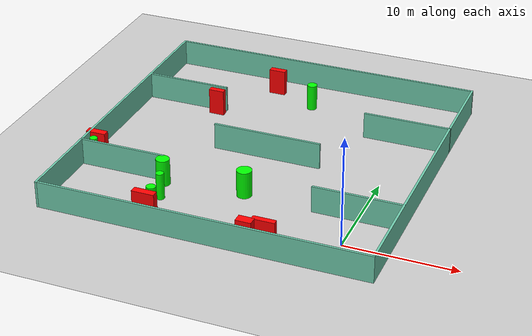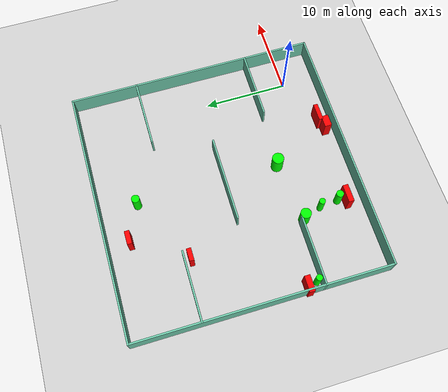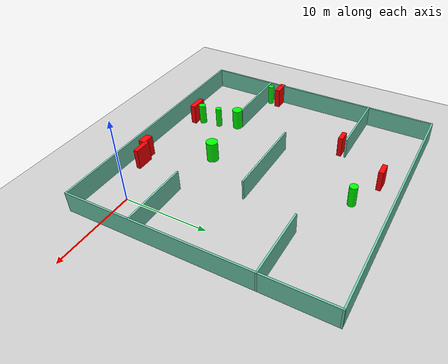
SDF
<sdf version="1.7">
 <world name="default">
  <light name="sun" type="directional">
   <pose>0 0 10 0 -0 0</pose>
   <diffuse>0.8 0.8 0.8 1</diffuse>
   <specular>0.2 0.2 0.2 1</specular>
   <attenuation>
    <range>1000</range>
    <constant>0.9</constant>
    <linear>0.01</linear>
    <quadratic>0.001</quadratic>
   </attenuation>
   <direction>-0.5 0.1 -0.9</direction>
   <spot><inner_angle>0</inner_angle><outer_angle>0</outer_angle><falloff>0</falloff></spot>
  </light>
  <model name="ground_plane">
   <static>1</static>
   <link name="link">
    <collision name="collision">
     <geometry><plane><normal>0 0 1</normal><size>100 100</size></plane></geometry>
     <surface>
      <contact><collide_bitmask>65535</collide_bitmask></contact>
      <friction><ode><mu>100</mu><mu2>50</mu2></ode></friction>
     </surface>
    </collision>
    <visual name="visual">
     <cast_shadows>0</cast_shadows>
     <geometry><plane><normal>0 0 1</normal><size>100 100</size></plane></geometry>
     <material>
      <script><uri>file://media/materials/scripts/gazebo.material</uri><name>Gazebo/Grey</name></script>
     </material>
    </visual>
   </link>
  </model>
  <gravity>0 0 -9.8</gravity>
  <magnetic_field>6e-06 2.3e-05 -4.2e-05</magnetic_field>
  <atmosphere type="adiabatic"/>
  <physics type="ode">
   <max_step_size>0.001</max_step_size>
   <real_time_factor>1</real_time_factor>
   <real_time_update_rate>1000</real_time_update_rate>
  </physics>
  <scene><ambient>0.4 0.4 0.4 1</ambient><background>0.7 0.7 0.7 1</background><shadows>1</shadows></scene>
  <spherical_coordinates>
   <surface_model>EARTH_WGS84</surface_model>
   <latitude_deg>0</latitude_deg>
   <longitude_deg>0</longitude_deg>
   <elevation>0</elevation>
   <heading_deg>0</heading_deg>
  </spherical_coordinates>
  <model name="my_base_walls">
   <link name="Wall_10">
    <collision name="Wall_10_Collision">
     <geometry><box><size>8.2 0.2 2.5</size></box></geometry>
     <pose>0 0 1.25 0 -0 0</pose>
    </collision>
    <visual name="Wall_10_Visual">
     <pose>0 0 1.25 0 -0 0</pose>
     <geometry><box><size>8.2 0.2 2.5</size></box></geometry>
     <material>
      <script><uri>file://media/materials/scripts/gazebo.material</uri><name>Gazebo/Grey</name></script>
      <ambient>0.435294 0.796078 0.67451 1</ambient>
     </material>
     <meta><layer>0</layer></meta>
    </visual>
    <pose>-11 -7 0 0 -0 0</pose>
   </link>
   <link name="Wall_12">
    <collision name="Wall_12_Collision">
     <geometry><box><size>8.2 0.2 2.5</size></box></geometry>
     <pose>0 0 1.25 0 -0 0</pose>
    </collision>
    <visual name="Wall_12_Visual">
     <pose>0 0 1.25 0 -0 0</pose>
     <geometry><box><size>8.2 0.2 2.5</size></box></geometry>
     <material>
      <script><uri>file://media/materials/scripts/gazebo.material</uri><name>Gazebo/Grey</name></script>
      <ambient>0.435294 0.796078 0.67451 1</ambient>
     </material>
     <meta><layer>0</layer></meta>
    </visual>
    <pose>-11 7 0 0 -0 0</pose>
   </link>
   <link name="Wall_14">
    <collision name="Wall_14_Collision">
     <geometry><box><size>8.2 0.2 2.5</size></box></geometry>
     <pose>0 0 1.25 0 -0 0</pose>
    </collision>
    <visual name="Wall_14_Visual">
     <pose>0 0 1.25 0 -0 0</pose>
     <geometry><box><size>8.2 0.2 2.5</size></box></geometry>
     <material>
      <script><uri>file://media/materials/scripts/gazebo.material</uri><name>Gazebo/Grey</name></script>
      <ambient>0.435294 0.796078 0.67451 1</ambient>
     </material>
     <meta><layer>0</layer></meta>
    </visual>
    <pose>11 7 0 0 -0 3.14159</pose>
   </link>
   <link name="Wall_16">
    <collision name="Wall_16_Collision">
     <geometry><box><size>10.2 0.2 2.5</size></box></geometry>
     <pose>0 0 1.25 0 -0 0</pose>
    </collision>
    <visual name="Wall_16_Visual">
     <pose>0 0 1.25 0 -0 0</pose>
     <geometry><box><size>10.2 0.2 2.5</size></box></geometry>
     <material>
      <script><uri>file://media/materials/scripts/gazebo.material</uri><name>Gazebo/Grey</name></script>
      <ambient>0.435294 0.796078 0.67451 1</ambient>
     </material>
     <meta><layer>0</layer></meta>
    </visual>
    <pose>0 0 0 0 -0 3.14159</pose>
   </link>
   <link name="Wall_2">
    <collision name="Wall_2_Collision">
     <geometry><box><size>30.2 0.2 2.5</size></box></geometry>
     <pose>0 0 1.25 0 -0 0</pose>
    </collision>
    <visual name="Wall_2_Visual">
     <pose>0 0 1.25 0 -0 0</pose>
     <geometry><box><size>30.2 0.2 2.5</size></box></geometry>
     <material>
      <script><uri>file://media/materials/scripts/gazebo.material</uri><name>Gazebo/Grey</name></script>
      <ambient>0.435294 0.796078 0.67451 1</ambient>
     </material>
     <meta><layer>0</layer></meta>
    </visual>
    <pose>0 -15 0 0 -0 3.14159</pose>
   </link>
   <link name="Wall_3">
    <collision name="Wall_3_Collision">
     <geometry><box><size>30.2 0.2 2.5</size></box></geometry>
     <pose>0 0 1.25 0 -0 0</pose>
    </collision>
    <visual name="Wall_3_Visual">
     <pose>0 0 1.25 0 -0 0</pose>
     <geometry><box><size>30.2 0.2 2.5</size></box></geometry>
     <material>
      <script><uri>file://media/materials/scripts/gazebo.material</uri><name>Gazebo/Grey</name></script>
      <ambient>0.435294 0.796078 0.67451 1</ambient>
     </material>
     <meta><layer>0</layer></meta>
    </visual>
    <pose>-15 0 0 0 -0 1.5708</pose>
   </link>
   <link name="Wall_4">
    <collision name="Wall_4_Collision">
     <geometry><box><size>30.2 0.2 2.5</size></box></geometry>
     <pose>0 0 1.25 0 -0 0</pose>
    </collision>
    <visual name="Wall_4_Visual">
     <pose>0 0 1.25 0 -0 0</pose>
     <geometry><box><size>30.2 0.2 2.5</size></box></geometry>
     <material>
      <script><uri>file://media/materials/scripts/gazebo.material</uri><name>Gazebo/Grey</name></script>
      <ambient>0.435294 0.796078 0.67451 1</ambient>
     </material>
     <meta><layer>0</layer></meta>
    </visual>
    <pose>0 15 0 0 -0 0</pose>
   </link>
   <link name="Wall_6">
    <collision name="Wall_6_Collision">
     <geometry><box><size>30.2 0.2 2.5</size></box></geometry>
     <pose>0 0 1.25 0 -0 0</pose>
    </collision>
    <visual name="Wall_6_Visual">
     <pose>0 0 1.25 0 -0 0</pose>
     <geometry><box><size>30.2 0.2 2.5</size></box></geometry>
     <material>
      <script><uri>file://media/materials/scripts/gazebo.material</uri><name>Gazebo/Grey</name></script>
      <ambient>0.435294 0.796078 0.67451 1</ambient>
     </material>
     <meta><layer>0</layer></meta>
    </visual>
    <pose>15 0 0 0 -0 1.5708</pose>
   </link>
   <link name="Wall_8">
    <collision name="Wall_8_Collision">
     <geometry><box><size>8.2 0.2 2.5</size></box></geometry>
     <pose>0 0 1.25 0 -0 0</pose>
    </collision>
    <visual name="Wall_8_Visual">
     <pose>0 0 1.25 0 -0 0</pose>
     <geometry><box><size>8.2 0.2 2.5</size></box></geometry>
     <material>
      <script><uri>file://media/materials/scripts/gazebo.material</uri><name>Gazebo/Grey</name></script>
      <ambient>0.435294 0.796078 0.67451 1</ambient>
     </material>
     <meta><layer>0</layer></meta>
    </visual>
    <pose>11 -7 0 0 -0 3.14159</pose>
   </link>
   <static>1</static>
   <pose>-11 11 0 0 -0 0</pose>
  </model>
  <model name="cylinder1">
   <static>1</static>
   <link name="link">
    <inertial>
     <mass>1</mass>
     <inertia><ixx>0.5</ixx><ixy>0</ixy><ixz>0</ixz><iyy>0.5</iyy><iyz>0</iyz><izz>1</izz></inertia>
    </inertial>
    <collision name="collision">
     <geometry><cylinder><radius>0.3645807480539847</radius><length>2.5</length></cylinder></geometry>
    </collision>
    <visual name="visual">
     <geometry><cylinder><radius>0.3645807480539847</radius><length>2.5</length></cylinder></geometry>
     <material>
      <ambient>0 1 0 1</ambient>
      <diffuse>0 1 0 1</diffuse>
      <specular>0.1 0.1 0.1 1</specular>
      <emissive>0 0 0 0</emissive>
     </material>
    </visual>
   </link>
   <pose>-25.078507470534383 4.517446416412261 1.25 0 0 0</pose>
  </model>
  <model name="cylinder2">
   <static>1</static>
   <link name="link">
    <inertial>
     <mass>1</mass>
     <inertia><ixx>0.5</ixx><ixy>0</ixy><ixz>0</ixz><iyy>0.5</iyy><iyz>0</iyz><izz>1</izz></inertia>
    </inertial>
    <collision name="collision">
     <geometry><cylinder><radius>0.6222796259743926</radius><length>2.5</length></cylinder></geometry>
    </collision>
    <visual name="visual">
     <geometry><cylinder><radius>0.6222796259743926</radius><length>2.5</length></cylinder></geometry>
     <material>
      <ambient>0 1 0 1</ambient>
      <diffuse>0 1 0 1</diffuse>
      <specular>0.1 0.1 0.1 1</specular>
      <emissive>0 0 0 0</emissive>
     </material>
    </visual>
   </link>
   <pose>-17.736164204803416 3.4489146264422983 1.25 0 0 0</pose>
  </model>
  <model name="cylinder3">
   <static>1</static>
   <link name="link">
    <inertial>
     <mass>1</mass>
     <inertia><ixx>0.5</ixx><ixy>0</ixy><ixz>0</ixz><iyy>0.5</iyy><iyz>0</iyz><izz>1</izz></inertia>
    </inertial>
    <collision name="collision">
     <geometry><cylinder><radius>0.6941285610435154</radius><length>2.5</length></cylinder></geometry>
    </collision>
    <visual name="visual">
     <geometry><cylinder><radius>0.6941285610435154</radius><length>2.5</length></cylinder></geometry>
     <material>
      <ambient>0 1 0 1</ambient>
      <diffuse>0 1 0 1</diffuse>
      <specular>0.1 0.1 0.1 1</specular>
      <emissive>0 0 0 0</emissive>
     </material>
    </visual>
   </link>
   <pose>-10.394983053189735 4.314313140030261 1.25 0 0 0</pose>
  </model>
  <model name="cylinder4">
   <static>1</static>
   <link name="link">
    <inertial>
     <mass>1</mass>
     <inertia><ixx>0.5</ixx><ixy>0</ixy><ixz>0</ixz><iyy>0.5</iyy><iyz>0</iyz><izz>1</izz></inertia>
    </inertial>
    <collision name="collision">
     <geometry><cylinder><radius>0.47138811409797843</radius><length>2.5</length></cylinder></geometry>
    </collision>
    <visual name="visual">
     <geometry><cylinder><radius>0.47138811409797843</radius><length>2.5</length></cylinder></geometry>
     <material>
      <ambient>0 1 0 1</ambient>
      <diffuse>0 1 0 1</diffuse>
      <specular>0.1 0.1 0.1 1</specular>
      <emissive>0 0 0 0</emissive>
     </material>
    </visual>
   </link>
   <pose>-10.54778153919859 21.558662615202078 1.25 0 0 0</pose>
  </model>
  <model name="cylinder5">
   <static>1</static>
   <link name="link">
    <inertial>
     <mass>1</mass>
     <inertia><ixx>0.5</ixx><ixy>0</ixy><ixz>0</ixz><iyy>0.5</iyy><iyz>0</iyz><izz>1</izz></inertia>
    </inertial>
    <collision name="collision">
     <geometry><cylinder><radius>0.36125593280532</radius><length>2.5</length></cylinder></geometry>
    </collision>
    <visual name="visual">
     <geometry><cylinder><radius>0.36125593280532</radius><length>2.5</length></cylinder></geometry>
     <material>
      <ambient>0 1 0 1</ambient>
      <diffuse>0 1 0 1</diffuse>
      <specular>0.1 0.1 0.1 1</specular>
      <emissive>0 0 0 0</emissive>
     </material>
    </visual>
   </link>
   <pose>-16.900418319210324 1.1619202292699233 1.25 0 0 0</pose>
  </model>
  <model name="cylinder6">
   <static>1</static>
   <link name="link">
    <inertial>
     <mass>1</mass>
     <inertia><ixx>0.5</ixx><ixy>0</ixy><ixz>0</ixz><iyy>0.5</iyy><iyz>0</iyz><izz>1</izz></inertia>
    </inertial>
    <collision name="collision">
     <geometry><cylinder><radius>0.42518065924508575</radius><length>2.5</length></cylinder></geometry>
    </collision>
    <visual name="visual">
     <geometry><cylinder><radius>0.42518065924508575</radius><length>2.5</length></cylinder></geometry>
     <material>
      <ambient>0 1 0 1</ambient>
      <diffuse>0 1 0 1</diffuse>
      <specular>0.1 0.1 0.1 1</specular>
      <emissive>0 0 0 0</emissive>
     </material>
    </visual>
   </link>
   <pose>-16.63285748208653 -1.0938721985155953 1.25 0 0 0</pose>
  </model>
  <model name="box1">
   <static>1</static>
   <link name="link">
    <inertial>
     <mass>1</mass>
     <inertia><ixx>0.083</ixx><ixy>0</ixy><ixz>0</ixz><iyy>0.083</iyy><iyz>0</iyz><izz>0.083</izz></inertia>
    </inertial>
    <collision name="collision">
     <geometry><box><size>1.5796559495843079 0.5756986584321936 2.5</size></box></geometry>
    </collision>
    <visual name="visual">
     <geometry><box><size>1.5796559495843079 0.5756986584321936 2.5</size></box></geometry>
     <material>
      <ambient>1 0 0 1</ambient>
      <diffuse>1 0 0 1</diffuse>
      <specular>0.1 0.1 0.1 1</specular>
      <emissive>0 0 0 0</emissive>
     </material>
    </visual>
    <sensor name="my_contact" type="contact">
     <contact><collision>box_collision</collision><topic>__default_topic__</topic></contact>
    </sensor>
   </link>
   <pose>-14.758710675173896 23.37746408084273 1.25 0 0 0</pose>
  </model>
  <model name="box2">
   <static>1</static>
   <link name="link">
    <inertial>
     <mass>1</mass>
     <inertia><ixx>0.083</ixx><ixy>0</ixy><ixz>0</ixz><iyy>0.083</iyy><iyz>0</iyz><izz>0.083</izz></inertia>
    </inertial>
    <collision name="collision">
     <geometry><box><size>2.081780538767756 0.6487198652148123 2.5</size></box></geometry>
    </collision>
    <visual name="visual">
     <geometry><box><size>2.081780538767756 0.6487198652148123 2.5</size></box></geometry>
     <material>
      <ambient>1 0 0 1</ambient>
      <diffuse>1 0 0 1</diffuse>
      <specular>0.1 0.1 0.1 1</specular>
      <emissive>0 0 0 0</emissive>
     </material>
    </visual>
    <sensor name="my_contact" type="contact">
     <contact><collision>box_collision</collision><topic>__default_topic__</topic></contact>
    </sensor>
   </link>
   <pose>-16.825566385375446 -2.0262976937875217 1.25 0 0 0</pose>
  </model>
  <model name="box3">
   <static>1</static>
   <link name="link">
    <inertial>
     <mass>1</mass>
     <inertia><ixx>0.083</ixx><ixy>0</ixy><ixz>0</ixz><iyy>0.083</iyy><iyz>0</iyz><izz>0.083</izz></inertia>
    </inertial>
    <collision name="collision">
     <geometry><box><size>2.075172622603961 0.5067712006150953 2.5</size></box></geometry>
    </collision>
    <visual name="visual">
     <geometry><box><size>2.075172622603961 0.5067712006150953 2.5</size></box></geometry>
     <material>
      <ambient>1 0 0 1</ambient>
      <diffuse>1 0 0 1</diffuse>
      <specular>0.1 0.1 0.1 1</specular>
      <emissive>0 0 0 0</emissive>
     </material>
    </visual>
    <sensor name="my_contact" type="contact">
     <contact><collision>box_collision</collision><topic>__default_topic__</topic></contact>
    </sensor>
   </link>
   <pose>-5.896792133352019 -2.334225325557522 1.25 0 0 0</pose>
  </model>
  <model name="box4">
   <static>1</static>
   <link name="link">
    <inertial>
     <mass>1</mass>
     <inertia><ixx>0.083</ixx><ixy>0</ixy><ixz>0</ixz><iyy>0.083</iyy><iyz>0</iyz><izz>0.083</izz></inertia>
    </inertial>
    <collision name="collision">
     <geometry><box><size>1.4028592011221104 0.8491014173192668 2.5</size></box></geometry>
    </collision>
    <visual name="visual">
     <geometry><box><size>1.4028592011221104 0.8491014173192668 2.5</size></box></geometry>
     <material>
      <ambient>1 0 0 1</ambient>
      <diffuse>1 0 0 1</diffuse>
      <specular>0.1 0.1 0.1 1</specular>
      <emissive>0 0 0 0</emissive>
     </material>
    </visual>
    <sensor name="my_contact" type="contact">
     <contact><collision>box_collision</collision><topic>__default_topic__</topic></contact>
    </sensor>
   </link>
   <pose>-7.333748295003739 -2.8650358085267045 1.25 0 0 0</pose>
  </model>
  <model name="box5">
   <static>1</static>
   <link name="link">
    <inertial>
     <mass>1</mass>
     <inertia><ixx>0.083</ixx><ixy>0</ixy><ixz>0</ixz><iyy>0.083</iyy><iyz>0</iyz><izz>0.083</izz></inertia>
    </inertial>
    <collision name="collision">
     <geometry><box><size>1.4565699335488809 0.5473307073216441 2.5</size></box></geometry>
    </collision>
    <visual name="visual">
     <geometry><box><size>1.4565699335488809 0.5473307073216441 2.5</size></box></geometry>
     <material>
      <ambient>1 0 0 1</ambient>
      <diffuse>1 0 0 1</diffuse>
      <specular>0.1 0.1 0.1 1</specular>
      <emissive>0 0 0 0</emissive>
     </material>
    </visual>
    <sensor name="my_contact" type="contact">
     <contact><collision>box_collision</collision><topic>__default_topic__</topic></contact>
    </sensor>
   </link>
   <pose>-18.60152057122722 17.26950163717126 1.25 0 0 0</pose>
  </model>
  <model name="box6">
   <static>1</static>
   <link name="link">
    <inertial>
     <mass>1</mass>
     <inertia><ixx>0.083</ixx><ixy>0</ixy><ixz>0</ixz><iyy>0.083</iyy><iyz>0</iyz><izz>0.083</izz></inertia>
    </inertial>
    <collision name="collision">
     <geometry><box><size>1.8480012710249951 0.67148172227394 2.5</size></box></geometry>
    </collision>
    <visual name="visual">
     <geometry><box><size>1.8480012710249951 0.67148172227394 2.5</size></box></geometry>
     <material>
      <ambient>1 0 0 1</ambient>
      <diffuse>1 0 0 1</diffuse>
      <specular>0.1 0.1 0.1 1</specular>
      <emissive>0 0 0 0</emissive>
     </material>
    </visual>
    <sensor name="my_contact" type="contact">
     <contact><collision>box_collision</collision><topic>__default_topic__</topic></contact>
    </sensor>
   </link>
   <pose>-25.37987135890712 5.725899464926076 1.25 0 0 0</pose>
  </model>
 </world>
</sdf>
